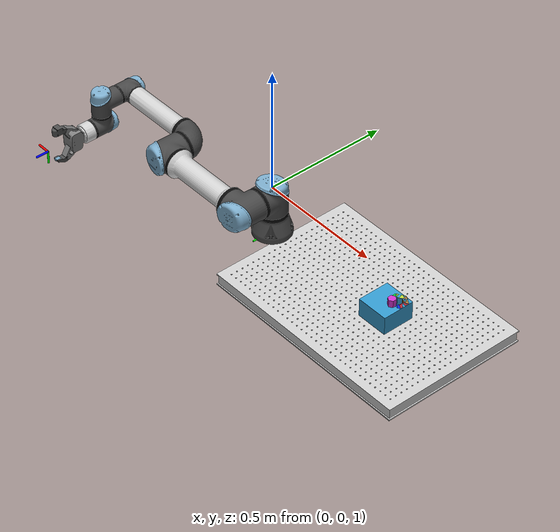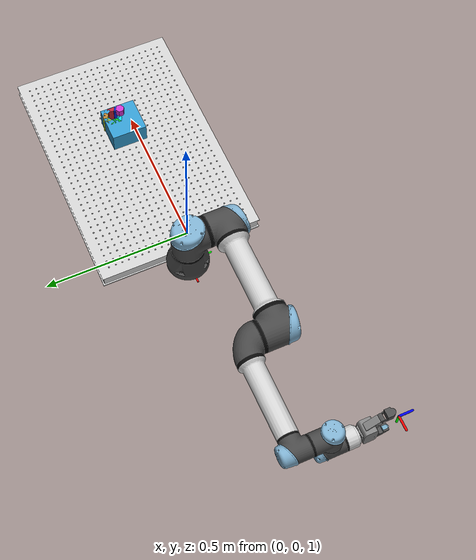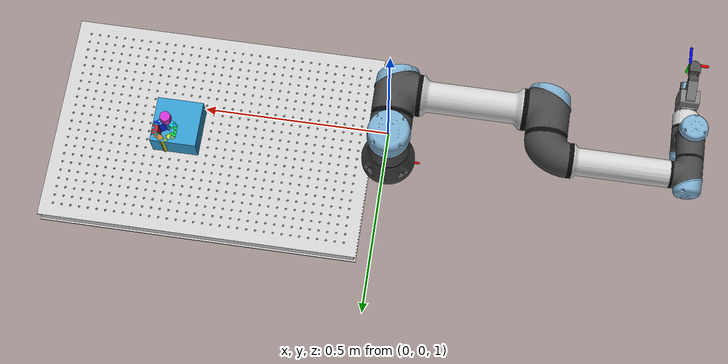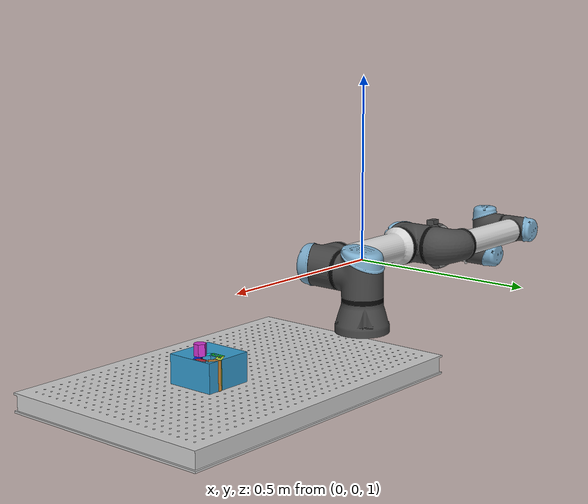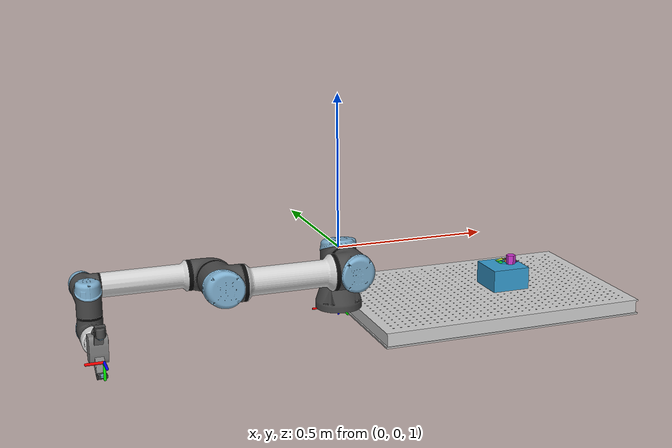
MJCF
<!-- UR5e with RH-P12-RN Gripper Integration -->
<!-- HEXAGON HOLE WITH 6 BOX PRIMITIVES (NO DECOMPOSITION) -->
<mujoco model="ur5e_with_rh_p12_rn">
    <compiler angle="radian" meshdir="assets/ur5e" inertiagrouprange="0 0"/>
    <option impratio="20" cone="elliptic" density="1.2" viscosity="0.00002" integrator="implicitfast" gravity="0 0 -9.81"/>
    <size nconmax="5000" njmax="5000"/>

    <!-- Default settings -->
    <default>
        <material specular="0.5" shininess="0.25"/>
        <joint axis="0 1 0" range="-3.14 3.14" armature="0.1"/>
        <geom type="mesh" contype="1" conaffinity="1" group="2" solref="0.002 1" solimp="0.95 0.99 0.001" friction="1.0 0.005 0.0001"/>
        <site size="0.001" rgba="0.5 0.5 0.5 0.3" group="4"/>
    </default>

    <!-- Collision settings -->
    <contact>
        <exclude body1="ur5e_base" body2="shoulder_link"/>
        <exclude body1="shoulder_link" body2="upper_arm_link"/>
        <exclude body1="upper_arm_link" body2="forearm_link"/>
        <exclude body1="forearm_link" body2="wrist_1_link"/>
        <exclude body1="wrist_1_link" body2="wrist_2_link"/>
        <exclude body1="wrist_2_link" body2="wrist_3_link"/>
        <exclude body1="wrist_3_link" body2="rh_p12_rn_base"/>
        <exclude body1="rh_p12_rn_base" body2="rh_p12_rn_r1"/>
        <exclude body1="rh_p12_rn_base" body2="rh_p12_rn_l1"/>
        <exclude body1="rh_p12_rn_r1" body2="rh_p12_rn_r2"/>
        <exclude body1="rh_p12_rn_l1" body2="rh_p12_rn_l2"/>
        <!-- DIGIT sensor collision exclusions -->
        <exclude body1="rh_p12_rn_r2" body2="digit_geltip_right"/>
        <exclude body1="rh_p12_rn_l2" body2="digit_geltip_left"/>
    </contact>

    <!-- UR5e assets -->
    <include file="assets/ur5e/ur5e_assets.xml"/>

    <!-- RH-P12-RN Gripper assets -->
    <include file="assets/gripper/rh_p12_rn_assets.xml"/>

    <!-- DIGIT sensor assets -->
    <asset>
        <!-- DIGIT sensor materials -->
        <material name="digit_gel" rgba="0.564 0.835 1 0.7"/>
        <material name="digit_base" rgba="0.1 0.1 0.1 1"/>

        <!-- DIGIT GelTip sensor meshes (only right and left) -->
        <mesh name="digit_geltip_right" file="../../RH-P12-RN/rh_p12_rn_description/meshes/Geltip_right.stl" scale="0.001 0.001 0.001"/>
        <mesh name="digit_geltip_left" file="../../RH-P12-RN/rh_p12_rn_description/meshes/Geltip_left.stl" scale="0.001 0.001 0.001"/>

        <!-- Hexagon peg mesh (same for visual and collision) -->
        <mesh name="hexagon_peg_mesh" file="assets/Objects/hexagon.STL" scale="0.001 0.001 0.001"/>

        <!-- Hexagon hole - VISUAL ONLY (no decomposition meshes) -->
        <mesh name="hole_hexagon_visual_mesh" file="assets/Objects/Hole_hexa.STL" scale="0.001 0.001 0.001"/>

        <!-- Hexagon wall piece for creating hole collision -->
        <mesh name="hexagon_wall_piece" file="assets/Objects/Wall1.STL" scale="0.001 0.001 0.001"/>
    </asset>

    <!-- Arena -->
    <include file="assets/common_arena/optical_breadboard.xml"/>

    <!-- Main robot body with gripper -->
    <worldbody>
      <!-- UR5e Base -->
      <body name="ur5e_base" pos="0 0 0.8" quat="0 0 0 -1">
        <inertial mass="4.0" pos="0 0 0" diaginertia="0.00443333156 0.00443333156 0.0072"/>
        <geom mesh="base_0" material="black" type="mesh" group="2"/>
        <geom mesh="base_1" material="jointgray" type="mesh" group="2"/>

        <!-- Robot base coordinate frame -->
        <site name="robot_frame" pos="0 0 0" size="0.05" type="sphere" rgba="1 1 0 0.5"/>
        <geom name="robot_x_axis" type="cylinder" pos="0.03 0 0" size="0.003 0.06" rgba="1 0 0 1" quat="0.707 0 0.707 0"/>
        <geom name="robot_y_axis" type="cylinder" pos="0 0.03 0" size="0.003 0.06" rgba="0 1 0 1" quat="0.707 0.707 0 0"/>
        <geom name="robot_z_axis" type="cylinder" pos="0 0 0.03" size="0.003 0.06" rgba="0 0 1 1"/>

        <!-- Shoulder Link -->
        <body name="shoulder_link" pos="0 0 0.163">
          <inertial mass="3.7" pos="0 0 0" diaginertia="0.0102675 0.0102675 0.00666"/>
          <joint name="shoulder_pan_joint" axis="0 0 1" range="0 6.28319" armature="0.1"/>
          <geom mesh="shoulder_0" material="urblue" type="mesh" group="2"/>
          <geom mesh="shoulder_1" material="black" type="mesh" group="2"/>
          <geom mesh="shoulder_2" material="jointgray" type="mesh" group="2"/>
          <geom type="capsule" size="0.06 0.06" pos="0 0 -0.04" group="3"/>

          <!-- Upper Arm Link -->
          <body name="upper_arm_link" pos="0 0.138 0" quat="1 0 1 0">
            <inertial mass="8.393" pos="0 0 0.2125" diaginertia="0.133886 0.133886 0.0151074"/>
            <joint name="shoulder_lift_joint" axis="0 1 0" range="-6.28319 6.28319" armature="0.1"/>
            <geom mesh="upperarm_0" material="linkgray" type="mesh" group="2"/>
            <geom mesh="upperarm_1" material="black" type="mesh" group="2"/>
            <geom mesh="upperarm_2" material="jointgray" type="mesh" group="2"/>
            <geom mesh="upperarm_3" material="urblue" type="mesh" group="2"/>
            <geom type="capsule" pos="0 -0.04 0" quat="1 1 0 0" size="0.06 0.06" group="3"/>
            <geom type="capsule" size="0.05 0.2" pos="0 0 0.2" group="3"/>

            <!-- Forearm Link -->
            <body name="forearm_link" pos="0 -0.131 0.425">
              <inertial mass="2.275" pos="0 0 0.196" diaginertia="0.0311796 0.0311796 0.004095"/>
              <joint name="elbow_joint" axis="0 1 0" range="-3.1415 3.1415" armature="0.1"/>
              <geom mesh="forearm_0" material="urblue" type="mesh" group="2"/>
              <geom mesh="forearm_1" material="linkgray" type="mesh" group="2"/>
              <geom mesh="forearm_2" material="black" type="mesh" group="2"/>
              <geom mesh="forearm_3" material="jointgray" type="mesh" group="2"/>
              <geom type="capsule" pos="0 0.08 0" quat="1 1 0 0" size="0.055 0.06" group="3"/>
              <geom type="capsule" size="0.038 0.19" pos="0 0 0.2" group="3"/>

              <!-- Wrist 1 Link -->
              <body name="wrist_1_link" pos="0 0 0.392" quat="1 0 1 0">
                <inertial mass="1.219" pos="0 0.127 0" diaginertia="0.0025599 0.0025599 0.0021942"/>
                <joint name="wrist_1_joint" axis="0 1 0" range="-6.28319 6.28319" armature="0.1"/>
                <geom mesh="wrist1_0" material="black" type="mesh" group="2"/>
                <geom mesh="wrist1_1" material="urblue" type="mesh" group="2"/>
                <geom mesh="wrist1_2" material="jointgray" type="mesh" group="2"/>
                <geom type="capsule" pos="0 0.05 0" quat="1 1 0 0" size="0.04 0.07" group="3"/>

                <!-- Wrist 2 Link -->
                <body name="wrist_2_link" pos="0 0.127 0">
                  <inertial mass="1.219" pos="0 0 0.1" diaginertia="0.0025599 0.0025599 0.0021942"/>
                  <joint name="wrist_2_joint" axis="0 0 1" range="-6.28319 6.28319" armature="0.1"/>
                  <geom mesh="wrist2_0" material="black" type="mesh" group="2"/>
                  <geom mesh="wrist2_1" material="urblue" type="mesh" group="2"/>
                  <geom mesh="wrist2_2" material="jointgray" type="mesh" group="2"/>
                  <geom type="capsule" size="0.04 0.06" pos="0 0 0.04" group="3"/>
                  <geom type="capsule" pos="0 0.02 0.1" quat="1 1 0 0" size="0.04 0.04" group="3"/>

                  <!-- Wrist 3 Link -->
                  <body name="wrist_3_link" pos="0 0 0.1">
                    <inertial mass="0.1889" pos="0 0.0771683 0" quat="1 0 0 1"
                      diaginertia="0.000132134 9.90863e-05 9.90863e-05"/>
                    <joint name="wrist_3_joint" axis="0 1 0" range="-6.28319 6.28319" armature="0.1"/>
                    <geom material="linkgray" mesh="wrist3" type="mesh" group="2"/>
                    <geom type="cylinder" pos="0 0.08 0" quat="1 1 0 0" size="0.04 0.02" group="3"/>

                    <!-- RH-P12-RN Gripper attached to end effector with adapter offset -->
                    <!-- The gripper is at Y=0.1 from wrist_3_link, this is the actual end effector -->
                    <body name="rh_p12_rn_base" pos="0 0.1 0" quat="0 0 0.707 0.707">
                      <inertial mass="0.236" pos="0 0 0.032" diaginertia="0.00017 0.00011 0.00017"/>
                      <geom mesh="base" material="gripper_grey" type="mesh"/>

                      <!-- End Effector Site at gripper base -->
                      <site name="eef_base" pos="0 0 0" size="0.005" rgba="0.5 0.5 0.5 0.5"/>

                      <!-- Extended EE Site at grasping center (between fingers, forward in X) -->
                      <!-- Approximately 80mm forward along X-axis from gripper base -->
                      <site name="eef_site" pos="0.0 0 0.15" size="0.01" rgba="1 1 0 0.9"/>
                      <!-- EE marker axes - visual only (group 1, contype/conaffinity 0 for no collision) -->
                      <geom name="ee_marker_axis_x" type="capsule" fromto="0 0 0.15 0.05 0 0.15" size="0.004" rgba="1 0 0 1" group="1" contype="0" conaffinity="0"/>
                      <geom name="ee_marker_axis_y" type="capsule" fromto="0 0 0.15 0.0 0.05 0.15" size="0.004" rgba="0 1 0 1" group="1" contype="0" conaffinity="0"/>
                      <geom name="ee_marker_axis_z" type="capsule" fromto="0 0 0.15 0.0 0 0.2" size="0.004" rgba="0 0 1 1" group="1" contype="0" conaffinity="0"/>

                      <!-- Right Finger Chain -->
                      <body name="rh_p12_rn_r1" pos="0 0.008 0.048">
                        <inertial mass="0.068" pos="0 0.034 0.004" diaginertia="0.00004 0.00002 0.00002"/>
                        <joint name="rh_p12_rn_right" axis="1 0 0" range="0 1.1" armature="0.01" damping="0.7"/>
                        <geom mesh="r1" material="gripper_grey" type="mesh"/>

                        <!-- Right Finger Tip -->
                        <body name="rh_p12_rn_r2" pos="0 0.0493634 0.0285">
                          <inertial mass="0.022" pos="0 0.006 0.011" diaginertia="0.00001 0.00001 0.00001"/>
                          <joint name="rh_r2" axis="-1 0 0" range="0 1.0" armature="0.005" damping="0.7"/>
                          <geom mesh="r2" material="gripper_dark" type="mesh"/>

                          <!-- DIGIT GelTip Right Sensor -->
                          <body name="digit_geltip_right" pos="0.0 0.0 0.0" quat="1.0 0.0 0.0 0 ">
                            <inertial mass="0.01" pos="0 0 0" diaginertia="0.00001 0.00001 0.00001"/>
                            <geom name="digit_geltip_right_geom" mesh="digit_geltip_right" material="digit_gel" type="mesh" contype="1" conaffinity="1"
                            friction="2.0 0.1 0.05" solref="0.001 1" solimp="0.99 0.999 0.0001"/>
                            <!-- Sensor coordinate frame -->
                            <site name="digit_right_frame" pos="0 0 0" size="0.002" type="sphere" rgba="0.564 0.835 1 0.7"/>
                          </body>
                        </body>
                      </body>

                      <!-- Left Finger Chain -->
                      <body name="rh_p12_rn_l1" pos="0 -0.008 0.048">
                        <inertial mass="0.068" pos="0 -0.034 0.004" diaginertia="0.00004 0.00002 0.00002"/>
                        <joint name="rh_p12_rn_left" axis="-1 0 0" range="0 1.1" armature="0.01" damping="0.7"/>
                        <geom mesh="l1" material="gripper_grey" type="mesh"/>

                        <!-- Left Finger Tip -->
                        <body name="rh_p12_rn_l2" pos="0 -0.0493634 0.0285">
                          <inertial mass="0.022" pos="0 -0.006 0.011" diaginertia="0.00001 0.00001 0.00001"/>
                          <joint name="rh_l2" axis="1 0 0" range="0 1.0" armature="0.005" damping="0.7"/>
                          <geom mesh="l2" material="gripper_dark" type="mesh"/>

                          <!-- DIGIT GelTip Left Sensor -->
                          <body name="digit_geltip_left" pos="0.0 -0.0 0.0" quat="1.0 0.0 0.0 0">
                            <inertial mass="0.01" pos="0 0 0" diaginertia="0.00001 0.00001 0.00001"/>
                            <geom name="digit_geltip_left_geom" mesh="digit_geltip_left" material="digit_gel" type="mesh" contype="1" conaffinity="1"
                            friction="2.0 0.1 0.05" solref="0.001 1" solimp="0.99 0.999 0.0001"/>
                            <!-- Sensor coordinate frame -->
                            <site name="digit_left_frame" pos="0 0 0" size="0.002" type="sphere" rgba="0.564 0.835 1 0.7"/>
                          </body>
                        </body>
                      </body>
                    </body>
                  </body>
                </body>
              </body>
            </body>
          </body>
        </body>
      </body>

      <!-- ========== HEXAGON PEG AND HOLE ========== -->
      <!-- Peg starts higher above the hole -->
      <body name="hexagon_peg_body" pos="0.629 0.0 0.875" euler="0 0 0.5236">
        <freejoint/>
        <inertial mass="0.02" pos="0 0 0" diaginertia="0.0005 0.0005 0.0005"/>
        <geom name="hexagon_peg_visual" type="mesh" mesh="hexagon_peg_mesh" rgba="0.8 0.2 0.8 1" contype="0" conaffinity="0"/>
        <geom name="hexagon_peg_collision" type="mesh" mesh="hexagon_peg_mesh" rgba="0.8 0.2 0.8 0.3"
              friction="1.0 0.005 0.0001" contype="1" conaffinity="1" solref="0.001 1" solimp="0.99 0.999 0.0001" margin="0.0"/>
      </body>

      <!-- ========== HEXAGON HOLE WITH 6 BOX PRIMITIVES ========== -->
      <!-- Fixed to world - no joints, very heavy, acts like fixed obstacle -->
      <!-- Hole center at peg position: 0.629, 0.029 -->
      <!-- Inner diameter: 34mm, wall thickness: 3mm -->
      <body name="hexagon_hole_body" pos="0.629 0.029 0.8">
        <!-- Make it extremely heavy so it doesn't move -->
        <inertial mass="10000" pos="0 0 0" diaginertia="1000 1000 1000"/>

        <!-- Bottom plate to prevent peg falling through -->
        <geom name="hex_bottom_plate" type="box" size="0.025 0.025 0.001" pos="0 0 -0.011"
              rgba="0.3 0.3 0.3 0.5" friction="1.0 0.005 0.0001" contype="1" conaffinity="1" solref="0.001 1" solimp="0.99 0.999 0.0001"/>

        <!-- Visual mesh - 보이는 것 (collision 없음) -->
        <geom name="hexagon_hole_visual" type="mesh" mesh="hole_hexagon_visual_mesh" pos="-0.029 -0.029 0.0" rgba="0.2 0.6 0.8 1" contype="0" conaffinity="0"/>

        <!-- 6 Wall1.STL pieces forming hexagon hole - 60도씩 회전 -->
        <!-- Wall 1: 0도 -->
        <geom name="hex_wall_0" type="mesh" mesh="hexagon_wall_piece" euler="0 0 0"
              rgba="1 0 0 0.7" friction="1.0 0.005 0.0001" contype="1" conaffinity="1" solref="0.001 1" solimp="0.99 0.999 0.0001"/>

        <!-- Wall 2: 60도 -->
        <geom name="hex_wall_1" type="mesh" mesh="hexagon_wall_piece" euler="0 0 1.0472"
              rgba="1 0.5 0 0.7" friction="1.0 0.005 0.0001" contype="1" conaffinity="1" solref="0.001 1" solimp="0.99 0.999 0.0001"/>

        <!-- Wall 3: 120도 -->
        <geom name="hex_wall_2" type="mesh" mesh="hexagon_wall_piece" euler="0 0 2.0944"
              rgba="1 1 0 0.7" friction="1.0 0.005 0.0001" contype="1" conaffinity="1" solref="0.001 1" solimp="0.99 0.999 0.0001"/>

        <!-- Wall 4: 180도 -->
        <geom name="hex_wall_3" type="mesh" mesh="hexagon_wall_piece" euler="0 0 3.1416"
              rgba="0 1 0 0.7" friction="1.0 0.005 0.0001" contype="1" conaffinity="1" solref="0.001 1" solimp="0.99 0.999 0.0001"/>

        <!-- Wall 5: 240도 -->
        <geom name="hex_wall_4" type="mesh" mesh="hexagon_wall_piece" euler="0 0 4.1888"
              rgba="0 1 1 0.7" friction="1.0 0.005 0.0001" contype="1" conaffinity="1" solref="0.001 1" solimp="0.99 0.999 0.0001"/>

        <!-- Wall 6: 300도 -->
        <geom name="hex_wall_5" type="mesh" mesh="hexagon_wall_piece" euler="0 0 5.2360"
              rgba="0 0 1 0.7" friction="1.0 0.005 0.0001" contype="1" conaffinity="1" solref="0.001 1" solimp="0.99 0.999 0.0001"/>

        <site name="hexagon_hole_center" pos="0 0 0" size="0.005" rgba="0 1 0 1"/>
      </body>
    </worldbody>

    <!-- UR5e actuators -->
    <include file="assets/ur5e/ur5e_actuators.xml"/>

    <!-- RH-P12-RN Gripper actuators -->
    <include file="assets/gripper/rh_p12_rn_actuators.xml"/>

</mujoco>

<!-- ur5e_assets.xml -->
<!-- UR5e Assets -->
<mujoco>
  <asset>
    <!-- Materials -->
    <material name="black" rgba="0.033 0.033 0.033 1"/>
    <material name="jointgray" rgba="0.278 0.278 0.278 1"/>
    <material name="linkgray" rgba="0.82 0.82 0.82 1"/>
    <material name="urblue" rgba="0.49 0.678 0.8 1"/>

    <!-- Meshes -->
    <mesh file="base_0.obj"/>
    <mesh file="base_1.obj"/>
    <mesh file="shoulder_0.obj"/>
    <mesh file="shoulder_1.obj"/>
    <mesh file="shoulder_2.obj"/>
    <mesh file="upperarm_0.obj"/>
    <mesh file="upperarm_1.obj"/>
    <mesh file="upperarm_2.obj"/>
    <mesh file="upperarm_3.obj"/>
    <mesh file="forearm_0.obj"/>
    <mesh file="forearm_1.obj"/>
    <mesh file="forearm_2.obj"/>
    <mesh file="forearm_3.obj"/>
    <mesh file="wrist1_0.obj"/>
    <mesh file="wrist1_1.obj"/>
    <mesh file="wrist1_2.obj"/>
    <mesh file="wrist2_0.obj"/>
    <mesh file="wrist2_1.obj"/>
    <mesh file="wrist2_2.obj"/>
    <mesh file="wrist3.obj"/>
  </asset>
</mujoco>

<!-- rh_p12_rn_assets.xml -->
<!-- RH-P12-RN Gripper Assets -->
<mujoco>
  <asset>
    <!-- Materials -->
    <material name="gripper_grey" rgba="0.5 0.5 0.5 1"/>
    <material name="gripper_dark" rgba="0.3 0.3 0.3 1"/>

    <!-- Meshes -->
    <mesh file="../../RH-P12-RN/rh_p12_rn_description/meshes/base.stl" scale="0.001 0.001 0.001"/>
    <mesh file="../../RH-P12-RN/rh_p12_rn_description/meshes/r1.stl" scale="0.001 0.001 0.001"/>
    <mesh file="../../RH-P12-RN/rh_p12_rn_description/meshes/r2.stl" scale="0.001 0.001 0.001"/>
    <mesh file="../../RH-P12-RN/rh_p12_rn_description/meshes/l1.stl" scale="0.001 0.001 0.001"/>
    <mesh file="../../RH-P12-RN/rh_p12_rn_description/meshes/l2.stl" scale="0.001 0.001 0.001"/>
  </asset>
</mujoco>

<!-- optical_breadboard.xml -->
<!-- Optical Breadboard Arena -->
<mujoco>
  <asset>
    <!-- Optical breadboard mesh and material -->
    <mesh name="optical_breadboard" file="../common_arena/OpticalBreadBoard.STL" scale="0.001 0.001 0.001"/>
    <material name="breadboard_material" rgba="0.8 0.8 0.8 1"/>
  </asset>

  <worldbody>
    <!-- Optical breadboard only - no extra ground plane -->
    <!-- Moved to negative X direction to align with robot workspace -->
    <body name="optical_breadboard" pos="0.5 0 0.8" quat="1 0 0 0">
      <geom name="breadboard_geom" mesh="optical_breadboard" material="breadboard_material" type="mesh" contype="1" conaffinity="1"/>
    </body>
  </worldbody>
</mujoco>

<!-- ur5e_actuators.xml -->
<!-- UR5e Actuators -->
<mujoco>
  <actuator>
    <!-- Joint actuators with PID control -->
    <general name="shoulder_pan_actuator" joint="shoulder_pan_joint"
             gaintype="fixed" biastype="affine"
             ctrlrange="0 6.28"
             gainprm="2000" biasprm="0 -2000 -400"
             forcerange="-150 150"/>

    <general name="shoulder_lift_actuator" joint="shoulder_lift_joint"
             gaintype="fixed" biastype="affine"
             ctrlrange="-3.14 3.14"
             gainprm="2000" biasprm="0 -2000 -400"
             forcerange="-150 150"/>

    <general name="elbow_actuator" joint="elbow_joint"
             gaintype="fixed" biastype="affine"
             ctrlrange="-3.1415 3.1415"
             gainprm="2000" biasprm="0 -2000 -400"
             forcerange="-150 150"/>

    <general name="wrist_1_actuator" joint="wrist_1_joint"
             gaintype="fixed" biastype="affine"
             ctrlrange="-3.14 3.14"
             gainprm="500" biasprm="0 -500 -100"
             forcerange="-28 28"/>

    <general name="wrist_2_actuator" joint="wrist_2_joint"
             gaintype="fixed" biastype="affine"
             ctrlrange="-3.14 3.14"
             gainprm="500" biasprm="0 -500 -100"
             forcerange="-28 28"/>

    <general name="wrist_3_actuator" joint="wrist_3_joint"
             gaintype="fixed" biastype="affine"
             ctrlrange="-3.14 3.14"
             gainprm="500" biasprm="0 -500 -100"
             forcerange="-28 28"/>
  </actuator>
</mujoco>

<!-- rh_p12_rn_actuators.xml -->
<!-- RH-P12-RN Gripper Actuators -->
<mujoco>
  <actuator>
    <!-- Single actuator for synchronized gripper motion -->
    <position name="gripper_actuator" joint="rh_p12_rn_right" ctrlrange="0 1.6" kp="100" kv="10" forcerange="-1000 1000"/>
  </actuator>

  <equality>
    <!-- Synchronize left finger with right finger (mirrored motion) -->
    <joint joint1="rh_p12_rn_right" joint2="rh_p12_rn_left" polycoef="0 1 0 0 0"/>
    <!-- Keep fingertips parallel by moving them opposite to main fingers -->
    <joint joint1="rh_p12_rn_right" joint2="rh_r2" polycoef="0 1 0 0 0"/>
    <joint joint1="rh_p12_rn_left" joint2="rh_l2" polycoef="0 1 0 0 0"/>
  </equality>
</mujoco>
